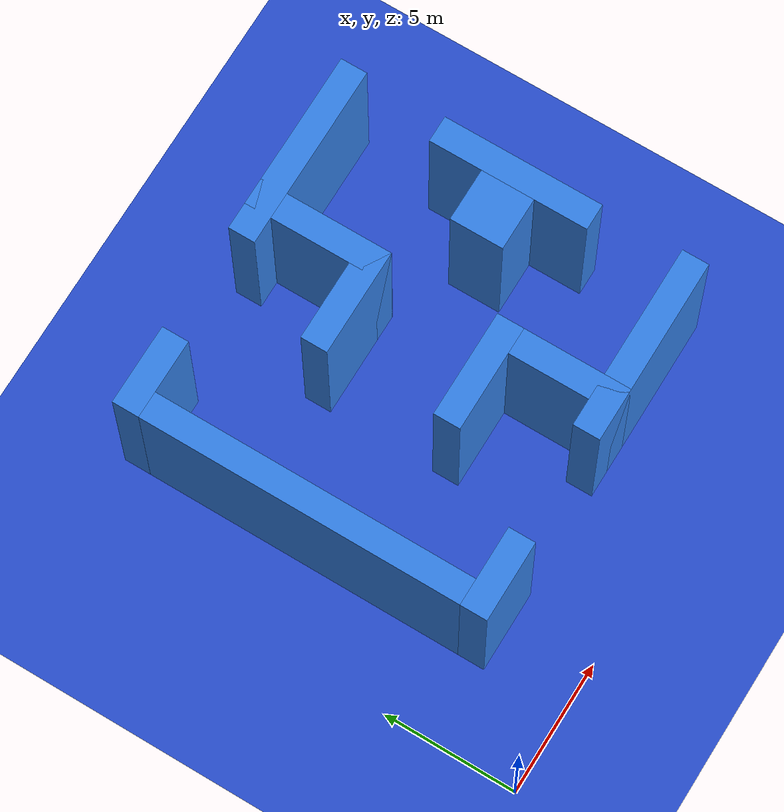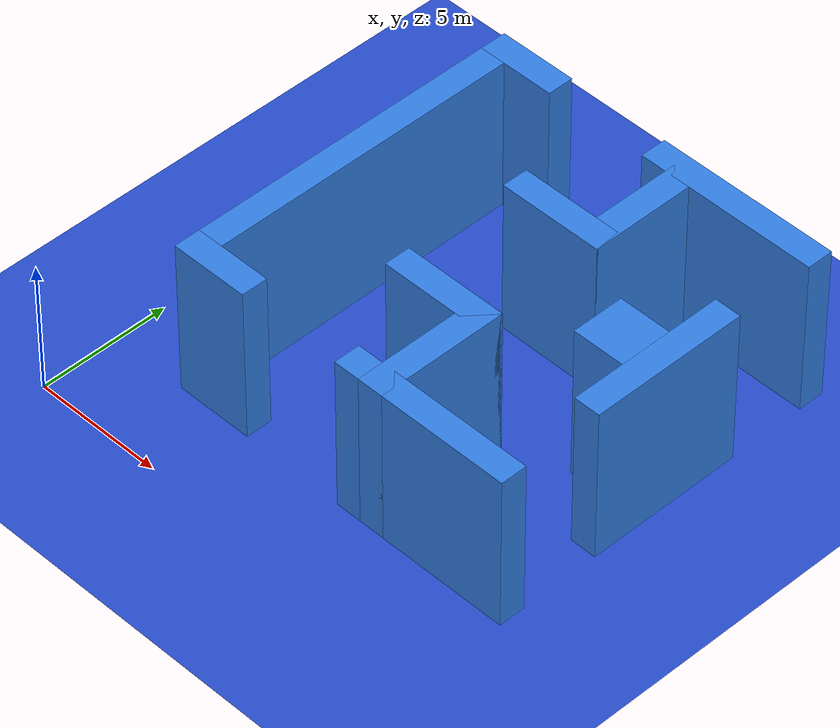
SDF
<?xml version="1.0" ?>
<sdf version="1.9">
  <world name="default">

    <!-- Set gravity -->
    <gravity>0 0 0</gravity>

    <!-- Physics settings -->
    <physics name="default_physics" type="ode">
      <max_step_size>0.001</max_step_size>
      <real_time_factor>1.0</real_time_factor>
    </physics>

    <!-- Ground plane -->
    <model name="ground_plane">
      <static>true</static>
      <link name="link">
        <collision name="collision">
          <geometry>
            <plane>
              <normal>0 0 1</normal>
              <size>100 100</size>
            </plane>
          </geometry>
        </collision>
        <visual name="visual">
          <geometry>
            <plane>
              <normal>0 0 1</normal>
              <size>100 100</size>
            </plane>
          </geometry>
          <material>
            <script>
              <uri>file://media/materials/scripts/gazebo.material</uri>
              <name>Gazebo/Blue</name>
            </script>
          </material>
          <transparency>0.3</transparency>
        </visual>
      </link>
    </model>

    <!-- Lighting -->
    <light type="directional" name="sun">
      <cast_shadows>true</cast_shadows>
      <pose>0 0 10 0 0 0</pose>
      <diffuse>1.0 1.0 1.0 1</diffuse>
      <specular>0.1 0.1 0.1 1</specular>
      <direction>-0.5 0.1 -1</direction>
    </light>

    <model name="obstacle_0">
      <static>true</static>
      <pose>4.5 3.5 3.0 0 0 0</pose>
      <link name="link">
        <collision name="collision">
          <geometry>
            <box>
              <size>3 1 6</size>
            </box>
          </geometry>
        </collision>
        <visual name="visual">
          <geometry>
            <box>
              <size>3 1 6</size>
            </box>
          </geometry>
          <material>
            <ambient>0.2 0.5 0.9 1</ambient>
            <diffuse>0.2 0.5 0.9 1</diffuse>
          </material>
        </visual>
      </link>
    </model>

    <model name="obstacle_1">
      <static>true</static>
      <pose>3.5 10.0 3.0 0 0 0</pose>
      <link name="link">
        <collision name="collision">
          <geometry>
            <box>
              <size>1 12 6</size>
            </box>
          </geometry>
        </collision>
        <visual name="visual">
          <geometry>
            <box>
              <size>1 12 6</size>
            </box>
          </geometry>
          <material>
            <ambient>0.2 0.5 0.9 1</ambient>
            <diffuse>0.2 0.5 0.9 1</diffuse>
          </material>
        </visual>
      </link>
    </model>

    <model name="obstacle_2">
      <static>true</static>
      <pose>4.5 16.5 3.0 0 0 0</pose>
      <link name="link">
        <collision name="collision">
          <geometry>
            <box>
              <size>3 1 6</size>
            </box>
          </geometry>
        </collision>
        <visual name="visual">
          <geometry>
            <box>
              <size>3 1 6</size>
            </box>
          </geometry>
          <material>
            <ambient>0.2 0.5 0.9 1</ambient>
            <diffuse>0.2 0.5 0.9 1</diffuse>
          </material>
        </visual>
      </link>
    </model>

    <model name="obstacle_3">
      <static>true</static>
      <pose>10.0 7.5 3.0 0 0 0</pose>
      <link name="link">
        <collision name="collision">
          <geometry>
            <box>
              <size>4 1 6</size>
            </box>
          </geometry>
        </collision>
        <visual name="visual">
          <geometry>
            <box>
              <size>4 1 6</size>
            </box>
          </geometry>
          <material>
            <ambient>0.2 0.5 0.9 1</ambient>
            <diffuse>0.2 0.5 0.9 1</diffuse>
          </material>
        </visual>
      </link>
    </model>

    <model name="obstacle_4">
      <static>true</static>
      <pose>10.0 12.5 3.0 0 0 0</pose>
      <link name="link">
        <collision name="collision">
          <geometry>
            <box>
              <size>4 1 6</size>
            </box>
          </geometry>
        </collision>
        <visual name="visual">
          <geometry>
            <box>
              <size>4 1 6</size>
            </box>
          </geometry>
          <material>
            <ambient>0.2 0.5 0.9 1</ambient>
            <diffuse>0.2 0.5 0.9 1</diffuse>
          </material>
        </visual>
      </link>
    </model>

    <model name="obstacle_5">
      <static>true</static>
      <pose>11.5 5.5 3.0 0 0 0</pose>
      <link name="link">
        <collision name="collision">
          <geometry>
            <box>
              <size>1 5 6</size>
            </box>
          </geometry>
        </collision>
        <visual name="visual">
          <geometry>
            <box>
              <size>1 5 6</size>
            </box>
          </geometry>
          <material>
            <ambient>0.2 0.5 0.9 1</ambient>
            <diffuse>0.2 0.5 0.9 1</diffuse>
          </material>
        </visual>
      </link>
    </model>

    <model name="obstacle_6">
      <static>true</static>
      <pose>11.5 14.5 3.0 0 0 0</pose>
      <link name="link">
        <collision name="collision">
          <geometry>
            <box>
              <size>1 5 6</size>
            </box>
          </geometry>
        </collision>
        <visual name="visual">
          <geometry>
            <box>
              <size>1 5 6</size>
            </box>
          </geometry>
          <material>
            <ambient>0.2 0.5 0.9 1</ambient>
            <diffuse>0.2 0.5 0.9 1</diffuse>
          </material>
        </visual>
      </link>
    </model>

    <model name="obstacle_7">
      <static>true</static>
      <pose>13.5 3.5 3.0 0 0 0</pose>
      <link name="link">
        <collision name="collision">
          <geometry>
            <box>
              <size>7 1 6</size>
            </box>
          </geometry>
        </collision>
        <visual name="visual">
          <geometry>
            <box>
              <size>7 1 6</size>
            </box>
          </geometry>
          <material>
            <ambient>0.2 0.5 0.9 1</ambient>
            <diffuse>0.2 0.5 0.9 1</diffuse>
          </material>
        </visual>
      </link>
    </model>

    <model name="obstacle_8">
      <static>true</static>
      <pose>13.5 16.5 3.0 0 0 0</pose>
      <link name="link">
        <collision name="collision">
          <geometry>
            <box>
              <size>7 1 6</size>
            </box>
          </geometry>
        </collision>
        <visual name="visual">
          <geometry>
            <box>
              <size>7 1 6</size>
            </box>
          </geometry>
          <material>
            <ambient>0.2 0.5 0.9 1</ambient>
            <diffuse>0.2 0.5 0.9 1</diffuse>
          </material>
        </visual>
      </link>
    </model>

    <model name="obstacle_9">
      <static>true</static>
      <pose>15.0 10.0 3.0 0 0 0</pose>
      <link name="link">
        <collision name="collision">
          <geometry>
            <box>
              <size>2 2 6</size>
            </box>
          </geometry>
        </collision>
        <visual name="visual">
          <geometry>
            <box>
              <size>2 2 6</size>
            </box>
          </geometry>
          <material>
            <ambient>0.2 0.5 0.9 1</ambient>
            <diffuse>0.2 0.5 0.9 1</diffuse>
          </material>
        </visual>
      </link>
    </model>

    <model name="obstacle_10">
      <static>true</static>
      <pose>16.5 10.0 3.0 0 0 0</pose>
      <link name="link">
        <collision name="collision">
          <geometry>
            <box>
              <size>1 6 6</size>
            </box>
          </geometry>
        </collision>
        <visual name="visual">
          <geometry>
            <box>
              <size>1 6 6</size>
            </box>
          </geometry>
          <material>
            <ambient>0.2 0.5 0.9 1</ambient>
            <diffuse>0.2 0.5 0.9 1</diffuse>
          </material>
        </visual>
      </link>
    </model>

  </world>
</sdf>
